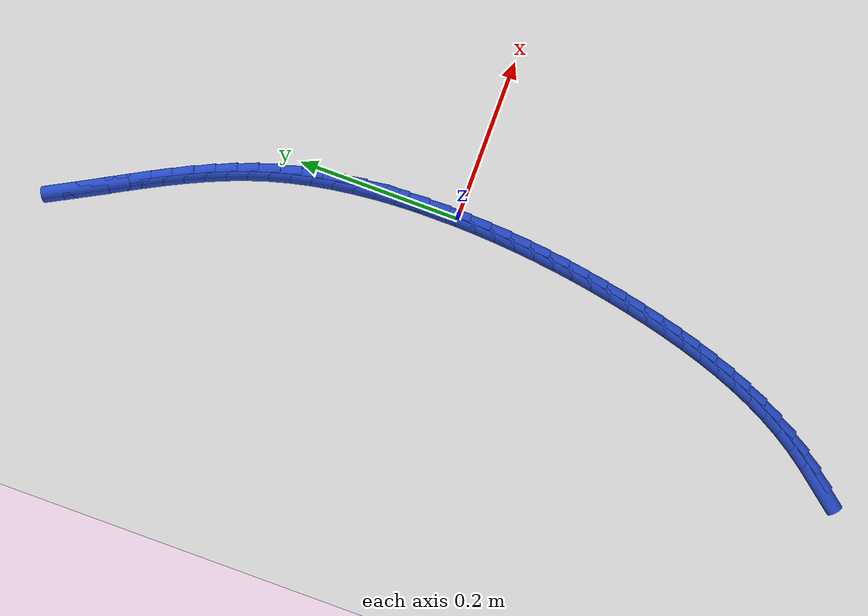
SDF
<sdf version="1.6">
 <world name="default">
  <model name="ground_plane">
   <static>1</static>
   <link name="link">
    <collision name="collision">
     <geometry><plane><normal>0 0 1</normal><size>100 100</size></plane></geometry>
     <surface><friction><ode><mu>100</mu><mu2>50</mu2></ode></friction></surface>
    </collision>
    <visual name="visual">
     <cast_shadows>0</cast_shadows>
     <geometry><plane><normal>0 0 1</normal><size>100 100</size></plane></geometry>
     <material>
      <script><uri>file://media/materials/scripts/gazebo.material</uri><name>Gazebo/WhiteGlow</name></script>
     </material>
    </visual>
   </link>
  </model>
  <model name="line">
   <link name="link_0">
    <pose>-2.6020852139652106e-18 -5.551115123125783e-17 0.01 0 1.57 1.5606720008051456</pose>
    <collision name="collision">
     <geometry><cylinder><radius>0.01</radius><length>0.08</length></cylinder></geometry>
    </collision>
    <visual name="visual">
     <material>
      <script><name>Gazebo/Blue</name><uri>file://media/materials/scripts/gazebo.material</uri></script>
     </material>
     <geometry><cylinder><radius>0.01</radius><length>0.08</length></cylinder></geometry>
    </visual>
   </link>
   <link name="link_1">
    <pose>0.00026168912169531475 0.025846676675730935 0.01 0 1.57 -1.5566072044804915</pose>
    <collision name="collision">
     <geometry><cylinder><radius>0.01</radius><length>0.08</length></cylinder></geometry>
    </collision>
    <visual name="visual">
     <material>
      <script><name>Gazebo/Blue</name><uri>file://media/materials/scripts/gazebo.material</uri></script>
     </material>
     <geometry><cylinder><radius>0.01</radius><length>0.08</length></cylinder></geometry>
    </visual>
   </link>
   <link name="link_2">
    <pose>-0.00010585917153231922 0.05174846386459949 0.01 0 1.57 -1.5296821576817423</pose>
    <collision name="collision">
     <geometry><cylinder><radius>0.01</radius><length>0.08</length></cylinder></geometry>
    </collision>
    <visual name="visual">
     <material>
      <script><name>Gazebo/Blue</name><uri>file://media/materials/scripts/gazebo.material</uri></script>
     </material>
     <geometry><cylinder><radius>0.01</radius><length>0.08</length></cylinder></geometry>
    </visual>
   </link>
   <link name="link_3">
    <pose>-0.001171199643128076 0.07764562175381282 0.01 0 1.57 -1.5000092741032287</pose>
    <collision name="collision">
     <geometry><cylinder><radius>0.01</radius><length>0.08</length></cylinder></geometry>
    </collision>
    <visual name="visual">
     <material>
      <script><name>Gazebo/Blue</name><uri>file://media/materials/scripts/gazebo.material</uri></script>
     </material>
     <geometry><cylinder><radius>0.01</radius><length>0.08</length></cylinder></geometry>
    </visual>
   </link>
   <link name="link_4">
    <pose>-0.0030028870565371206 0.10347841053057813 0.01 0 1.57 -1.4674426135967553</pose>
    <collision name="collision">
     <geometry><cylinder><radius>0.01</radius><length>0.08</length></cylinder></geometry>
    </collision>
    <visual name="visual">
     <material>
      <script><name>Gazebo/Blue</name><uri>file://media/materials/scripts/gazebo.material</uri></script>
     </material>
     <geometry><cylinder><radius>0.01</radius><length>0.08</length></cylinder></geometry>
    </visual>
   </link>
   <link name="link_5">
    <pose>-0.005669476175204622 0.12918709038210263 0.01 0 1.57 -1.4318322130279397</pose>
    <collision name="collision">
     <geometry><cylinder><radius>0.01</radius><length>0.08</length></cylinder></geometry>
    </collision>
    <visual name="visual">
     <material>
      <script><name>Gazebo/Blue</name><uri>file://media/materials/scripts/gazebo.material</uri></script>
     </material>
     <geometry><cylinder><radius>0.01</radius><length>0.08</length></cylinder></geometry>
    </visual>
   </link>
   <link name="link_6">
    <pose>-0.009239521762575751 0.15471192149559365 0.01 0 1.57 -1.3930316349678902</pose>
    <collision name="collision">
     <geometry><cylinder><radius>0.01</radius><length>0.08</length></cylinder></geometry>
    </collision>
    <visual name="visual">
     <material>
      <script><name>Gazebo/Blue</name><uri>file://media/materials/scripts/gazebo.material</uri></script>
     </material>
     <geometry><cylinder><radius>0.01</radius><length>0.08</length></cylinder></geometry>
    </visual>
   </link>
   <link name="link_7">
    <pose>-0.013781578582095673 0.1799931640582583 0.01 0 1.57 -1.3509078144669298</pose>
    <collision name="collision">
     <geometry><cylinder><radius>0.01</radius><length>0.08</length></cylinder></geometry>
    </collision>
    <visual name="visual">
     <material>
      <script><name>Gazebo/Blue</name><uri>file://media/materials/scripts/gazebo.material</uri></script>
     </material>
     <geometry><cylinder><radius>0.01</radius><length>0.08</length></cylinder></geometry>
    </visual>
   </link>
   <link name="link_8">
    <pose>-0.019364201397209554 0.20497107825730382 0.01 0 1.57 -1.3053535194428476</pose>
    <collision name="collision">
     <geometry><cylinder><radius>0.01</radius><length>0.08</length></cylinder></geometry>
    </collision>
    <visual name="visual">
     <material>
      <script><name>Gazebo/Blue</name><uri>file://media/materials/scripts/gazebo.material</uri></script>
     </material>
     <geometry><cylinder><radius>0.01</radius><length>0.08</length></cylinder></geometry>
    </visual>
   </link>
   <link name="link_9">
    <pose>-0.02605594497136256 0.2295859242799375 0.01 0 1.57 -1.2566637800848937</pose>
    <collision name="collision">
     <geometry><cylinder><radius>0.01</radius><length>0.08</length></cylinder></geometry>
    </collision>
    <visual name="visual">
     <material>
      <script><name>Gazebo/Blue</name><uri>file://media/materials/scripts/gazebo.material</uri></script>
     </material>
     <geometry><cylinder><radius>0.01</radius><length>0.08</length></cylinder></geometry>
    </visual>
   </link>
   <link name="link_10">
    <pose>-0.033917150734529215 0.25378242759625824 0.01 0 1.57 -1.2102945592711332</pose>
    <collision name="collision">
     <geometry><cylinder><radius>0.01</radius><length>0.08</length></cylinder></geometry>
    </collision>
    <visual name="visual">
     <material>
      <script><name>Gazebo/Blue</name><uri>file://media/materials/scripts/gazebo.material</uri></script>
     </material>
     <geometry><cylinder><radius>0.01</radius><length>0.08</length></cylinder></geometry>
    </visual>
   </link>
   <link name="link_11">
    <pose>-0.042885287553008605 0.27757211490371175 0.01 0 1.57 -1.1706071240606626</pose>
    <collision name="collision">
     <geometry><cylinder><radius>0.01</radius><length>0.08</length></cylinder></geometry>
    </collision>
    <visual name="visual">
     <material>
      <script><name>Gazebo/Blue</name><uri>file://media/materials/scripts/gazebo.material</uri></script>
     </material>
     <geometry><cylinder><radius>0.01</radius><length>0.08</length></cylinder></geometry>
    </visual>
   </link>
   <link name="link_12">
    <pose>-0.05280324863534753 0.3010179301553623 0.01 0 1.57 -1.1378139994246075</pose>
    <collision name="collision">
     <geometry><cylinder><radius>0.01</radius><length>0.08</length></cylinder></geometry>
    </collision>
    <visual name="visual">
     <material>
      <script><name>Gazebo/Blue</name><uri>file://media/materials/scripts/gazebo.material</uri></script>
     </material>
     <geometry><cylinder><radius>0.01</radius><length>0.08</length></cylinder></geometry>
    </visual>
   </link>
   <link name="link_13">
    <pose>-0.06351149506214147 0.3241841395614755 0.01 0 1.57 -1.1119159873322897</pose>
    <collision name="collision">
     <geometry><cylinder><radius>0.01</radius><length>0.08</length></cylinder></geometry>
    </collision>
    <visual name="visual">
     <material>
      <script><name>Gazebo/Blue</name><uri>file://media/materials/scripts/gazebo.material</uri></script>
     </material>
     <geometry><cylinder><radius>0.01</radius><length>0.08</length></cylinder></geometry>
    </visual>
   </link>
   <link name="link_14">
    <pose>-0.07485048791398585 0.34713500933231717 0.01 0 1.57 -1.0928558864539948</pose>
    <collision name="collision">
     <geometry><cylinder><radius>0.01</radius><length>0.08</length></cylinder></geometry>
    </collision>
    <visual name="visual">
     <material>
      <script><name>Gazebo/Blue</name><uri>file://media/materials/scripts/gazebo.material</uri></script>
     </material>
     <geometry><cylinder><radius>0.01</radius><length>0.08</length></cylinder></geometry>
    </visual>
   </link>
   <link name="link_15">
    <pose>-0.08666068827147619 0.36993480567815323 0.01 0 1.57 -1.0805554052208224</pose>
    <collision name="collision">
     <geometry><cylinder><radius>0.01</radius><length>0.08</length></cylinder></geometry>
    </collision>
    <visual name="visual">
     <material>
      <script><name>Gazebo/Blue</name><uri>file://media/materials/scripts/gazebo.material</uri></script>
     </material>
     <geometry><cylinder><radius>0.01</radius><length>0.08</length></cylinder></geometry>
    </visual>
   </link>
   <link name="link_16">
    <pose>-0.09878255721520791 0.3926477948092493 0.01 0 1.57 -1.0749414477813892</pose>
    <collision name="collision">
     <geometry><cylinder><radius>0.01</radius><length>0.08</length></cylinder></geometry>
    </collision>
    <visual name="visual">
     <material>
      <script><name>Gazebo/Blue</name><uri>file://media/materials/scripts/gazebo.material</uri></script>
     </material>
     <geometry><cylinder><radius>0.01</radius><length>0.08</length></cylinder></geometry>
    </visual>
   </link>
   <link name="link_17">
    <pose>-0.11105655582577649 0.41533824293587124 0.01 0 1.57 -1.0759622935303972</pose>
    <collision name="collision">
     <geometry><cylinder><radius>0.01</radius><length>0.08</length></cylinder></geometry>
    </collision>
    <visual name="visual">
     <material>
      <script><name>Gazebo/Blue</name><uri>file://media/materials/scripts/gazebo.material</uri></script>
     </material>
     <geometry><cylinder><radius>0.01</radius><length>0.08</length></cylinder></geometry>
    </visual>
   </link>
   <link name="link_18">
    <pose>-0.12332314518377742 0.43807041626828486 0.01 0 1.57 -1.0835945328563317</pose>
    <collision name="collision">
     <geometry><cylinder><radius>0.01</radius><length>0.08</length></cylinder></geometry>
    </collision>
    <visual name="visual">
     <material>
      <script><name>Gazebo/Blue</name><uri>file://media/materials/scripts/gazebo.material</uri></script>
     </material>
     <geometry><cylinder><radius>0.01</radius><length>0.08</length></cylinder></geometry>
    </visual>
   </link>
   <link name="link_239">
    <pose>-0.1478228244963894 -0.5095684443613625 0.01 0 1.57 0.902097547994053</pose>
    <collision name="collision">
     <geometry><cylinder><radius>0.01</radius><length>0.08</length></cylinder></geometry>
    </collision>
    <visual name="visual">
     <material>
      <script><name>Gazebo/Blue</name><uri>file://media/materials/scripts/gazebo.material</uri></script>
     </material>
     <geometry><cylinder><radius>0.01</radius><length>0.08</length></cylinder></geometry>
    </visual>
   </link>
   <link name="link_240">
    <pose>-0.13206080267132908 -0.4896200127712023 0.01 0 1.57 0.9519914985314588</pose>
    <collision name="collision">
     <geometry><cylinder><radius>0.01</radius><length>0.08</length></cylinder></geometry>
    </collision>
    <visual name="visual">
     <material>
      <script><name>Gazebo/Blue</name><uri>file://media/materials/scripts/gazebo.material</uri></script>
     </material>
     <geometry><cylinder><radius>0.01</radius><length>0.08</length></cylinder></geometry>
    </visual>
   </link>
   <link name="link_241">
    <pose>-0.1173458060415012 -0.46895596584724425 0.01 0 1.57 1.0100530473727374</pose>
    <collision name="collision">
     <geometry><cylinder><radius>0.01</radius><length>0.08</length></cylinder></geometry>
    </collision>
    <visual name="visual">
     <material>
      <script><name>Gazebo/Blue</name><uri>file://media/materials/scripts/gazebo.material</uri></script>
     </material>
     <geometry><cylinder><radius>0.01</radius><length>0.08</length></cylinder></geometry>
    </visual>
   </link>
   <link name="link_242">
    <pose>-0.10384591523954843 -0.4474588265535005 0.01 0 1.57 1.0671271466955847</pose>
    <collision name="collision">
     <geometry><cylinder><radius>0.01</radius><length>0.08</length></cylinder></geometry>
    </collision>
    <visual name="visual">
     <material>
      <script><name>Gazebo/Blue</name><uri>file://media/materials/scripts/gazebo.material</uri></script>
     </material>
     <geometry><cylinder><radius>0.01</radius><length>0.08</length></cylinder></geometry>
    </visual>
   </link>
   <link name="link_243">
    <pose>-0.09155624604552522 -0.4251576154854975 0.01 0 1.57 1.1191592557271175</pose>
    <collision name="collision">
     <geometry><cylinder><radius>0.01</radius><length>0.08</length></cylinder></geometry>
    </collision>
    <visual name="visual">
     <material>
      <script><name>Gazebo/Blue</name><uri>file://media/materials/scripts/gazebo.material</uri></script>
     </material>
     <geometry><cylinder><radius>0.01</radius><length>0.08</length></cylinder></geometry>
    </visual>
   </link>
   <link name="link_244">
    <pose>-0.0803943701215267 -0.4021470314933251 0.01 0 1.57 1.1661942485279635</pose>
    <collision name="collision">
     <geometry><cylinder><radius>0.01</radius><length>0.08</length></cylinder></geometry>
    </collision>
    <visual name="visual">
     <material>
      <script><name>Gazebo/Blue</name><uri>file://media/materials/scripts/gazebo.material</uri></script>
     </material>
     <geometry><cylinder><radius>0.01</radius><length>0.08</length></cylinder></geometry>
    </visual>
   </link>
   <link name="link_245">
    <pose>-0.07027749291041281 -0.37852208360714484 0.01 0 1.57 1.2083792132667515</pose>
    <collision name="collision">
     <geometry><cylinder><radius>0.01</radius><length>0.08</length></cylinder></geometry>
    </collision>
    <visual name="visual">
     <material>
      <script><name>Gazebo/Blue</name><uri>file://media/materials/scripts/gazebo.material</uri></script>
     </material>
     <geometry><cylinder><radius>0.01</radius><length>0.08</length></cylinder></geometry>
    </visual>
   </link>
   <link name="link_246">
    <pose>-0.061122819855044336 -0.35437778085712085 0.01 0 1.57 1.2459091884688371</pose>
    <collision name="collision">
     <geometry><cylinder><radius>0.01</radius><length>0.08</length></cylinder></geometry>
    </collision>
    <visual name="visual">
     <material>
      <script><name>Gazebo/Blue</name><uri>file://media/materials/scripts/gazebo.material</uri></script>
     </material>
     <geometry><cylinder><radius>0.01</radius><length>0.08</length></cylinder></geometry>
    </visual>
   </link>
   <link name="link_247">
    <pose>-0.05284755639828112 -0.32980913227341463 0.01 0 1.57 1.2789986236889528</pose>
    <collision name="collision">
     <geometry><cylinder><radius>0.01</radius><length>0.08</length></cylinder></geometry>
    </collision>
    <visual name="visual">
     <material>
      <script><name>Gazebo/Blue</name><uri>file://media/materials/scripts/gazebo.material</uri></script>
     </material>
     <geometry><cylinder><radius>0.01</radius><length>0.08</length></cylinder></geometry>
    </visual>
   </link>
   <link name="link_248">
    <pose>-0.04536890798298339 -0.3049111468861889 0.01 0 1.57 1.3078596234680686</pose>
    <collision name="collision">
     <geometry><cylinder><radius>0.01</radius><length>0.08</length></cylinder></geometry>
    </collision>
    <visual name="visual">
     <material>
      <script><name>Gazebo/Blue</name><uri>file://media/materials/scripts/gazebo.material</uri></script>
     </material>
     <geometry><cylinder><radius>0.01</radius><length>0.08</length></cylinder></geometry>
    </visual>
   </link>
   <link name="link_249">
    <pose>-0.03860408005201133 -0.27977883372560597 0.01 0 1.57 1.33268587897376</pose>
    <collision name="collision">
     <geometry><cylinder><radius>0.01</radius><length>0.08</length></cylinder></geometry>
    </collision>
    <visual name="visual">
     <material>
      <script><name>Gazebo/Blue</name><uri>file://media/materials/scripts/gazebo.material</uri></script>
     </material>
     <geometry><cylinder><radius>0.01</radius><length>0.08</length></cylinder></geometry>
    </visual>
   </link>
   <link name="link_250">
    <pose>-0.03247027804822513 -0.25450720182182823 0.01 0 1.57 1.353686403612672</pose>
    <collision name="collision">
     <geometry><cylinder><radius>0.01</radius><length>0.08</length></cylinder></geometry>
    </collision>
    <visual name="visual">
     <material>
      <script><name>Gazebo/Blue</name><uri>file://media/materials/scripts/gazebo.material</uri></script>
     </material>
     <geometry><cylinder><radius>0.01</radius><length>0.08</length></cylinder></geometry>
    </visual>
   </link>
   <link name="link_251">
    <pose>-0.026885660719618367 -0.2291901024511704 0.01 0 1.57 1.3727377716532887</pose>
    <collision name="collision">
     <geometry><cylinder><radius>0.01</radius><length>0.08</length></cylinder></geometry>
    </collision>
    <visual name="visual">
     <material>
      <script><name>Gazebo/Blue</name><uri>file://media/materials/scripts/gazebo.material</uri></script>
     </material>
     <geometry><cylinder><radius>0.01</radius><length>0.08</length></cylinder></geometry>
    </visual>
   </link>
   <link name="link_252">
    <pose>-0.02180545701025682 -0.2038763665070267 0.01 0 1.57 1.3921375088629513</pose>
    <collision name="collision">
     <geometry><cylinder><radius>0.01</radius><length>0.08</length></cylinder></geometry>
    </collision>
    <visual name="visual">
     <material>
      <script><name>Gazebo/Blue</name><uri>file://media/materials/scripts/gazebo.material</uri></script>
     </material>
     <geometry><cylinder><radius>0.01</radius><length>0.08</length></cylinder></geometry>
    </visual>
   </link>
   <link name="link_253">
    <pose>-0.01723305741164513 -0.1785563344636047 0.01 0 1.57 1.4120024652545362</pose>
    <collision name="collision">
     <geometry><cylinder><radius>0.01</radius><length>0.08</length></cylinder></geometry>
    </collision>
    <visual name="visual">
     <material>
      <script><name>Gazebo/Blue</name><uri>file://media/materials/scripts/gazebo.material</uri></script>
     </material>
     <geometry><cylinder><radius>0.01</radius><length>0.08</length></cylinder></geometry>
    </visual>
   </link>
   <link name="link_254">
    <pose>-0.01317507174137417 -0.15321643704257226 0.01 0 1.57 1.432292014539883</pose>
    <collision name="collision">
     <geometry><cylinder><radius>0.01</radius><length>0.08</length></cylinder></geometry>
    </collision>
    <visual name="visual">
     <material>
      <script><name>Gazebo/Blue</name><uri>file://media/materials/scripts/gazebo.material</uri></script>
     </material>
     <geometry><cylinder><radius>0.01</radius><length>0.08</length></cylinder></geometry>
    </visual>
   </link>
   <link name="link_255">
    <pose>-0.009638109817034935 -0.12784310496559803 0.01 0 1.57 1.4529620324614247</pose>
    <collision name="collision">
     <geometry><cylinder><radius>0.01</radius><length>0.08</length></cylinder></geometry>
    </collision>
    <visual name="visual">
     <material>
      <script><name>Gazebo/Blue</name><uri>file://media/materials/scripts/gazebo.material</uri></script>
     </material>
     <geometry><cylinder><radius>0.01</radius><length>0.08</length></cylinder></geometry>
    </visual>
   </link>
   <link name="link_256">
    <pose>-0.006628781456218435 -0.10242276895435054 0.01 0 1.57 1.473965227220159</pose>
    <collision name="collision">
     <geometry><cylinder><radius>0.01</radius><length>0.08</length></cylinder></geometry>
    </collision>
    <visual name="visual">
     <material>
      <script><name>Gazebo/Blue</name><uri>file://media/materials/scripts/gazebo.material</uri></script>
     </material>
     <geometry><cylinder><radius>0.01</radius><length>0.08</length></cylinder></geometry>
    </visual>
   </link>
   <link name="link_257">
    <pose>-0.004153696476515684 -0.07694185973049844 0.01 0 1.57 1.4952515445292043</pose>
    <collision name="collision">
     <geometry><cylinder><radius>0.01</radius><length>0.08</length></cylinder></geometry>
    </collision>
    <visual name="visual">
     <material>
      <script><name>Gazebo/Blue</name><uri>file://media/materials/scripts/gazebo.material</uri></script>
     </material>
     <geometry><cylinder><radius>0.01</radius><length>0.08</length></cylinder></geometry>
    </visual>
   </link>
   <link name="link_258">
    <pose>-0.0022194646955176855 -0.05138680801571023 0.01 0 1.57 1.5167686405386882</pose>
    <collision name="collision">
     <geometry><cylinder><radius>0.01</radius><length>0.08</length></cylinder></geometry>
    </collision>
    <visual name="visual">
     <material>
      <script><name>Gazebo/Blue</name><uri>file://media/materials/scripts/gazebo.material</uri></script>
     </material>
     <geometry><cylinder><radius>0.01</radius><length>0.08</length></cylinder></geometry>
    </visual>
   </link>
   <link name="link_259">
    <pose>-0.0008326959308154541 -0.025744044531654537 0.01 0 1.57 1.538462412827709</pose>
    <collision name="collision">
     <geometry><cylinder><radius>0.01</radius><length>0.08</length></cylinder></geometry>
    </collision>
    <visual name="visual">
     <material>
      <script><name>Gazebo/Blue</name><uri>file://media/materials/scripts/gazebo.material</uri></script>
     </material>
     <geometry><cylinder><radius>0.01</radius><length>0.08</length></cylinder></geometry>
    </visual>
   </link>
   <link name="link_260">
    <pose>5.204170427930421e-18 6.245004513516506e-17 0.01 0 1.57 1.5602775769202284</pose>
    <collision name="collision">
     <geometry><cylinder><radius>0.01</radius><length>0.08</length></cylinder></geometry>
    </collision>
    <visual name="visual">
     <material>
      <script><name>Gazebo/Blue</name><uri>file://media/materials/scripts/gazebo.material</uri></script>
     </material>
     <geometry><cylinder><radius>0.01</radius><length>0.08</length></cylinder></geometry>
    </visual>
   </link>
   <link name="link_261">
    <pose>0.0002720132793376812 0.025858894857585 0.01 0 1.57 -1.5594343800337438</pose>
    <collision name="collision">
     <geometry><cylinder><radius>0.01</radius><length>0.08</length></cylinder></geometry>
    </collision>
    <visual name="visual">
     <material>
      <script><name>Gazebo/Blue</name><uri>file://media/materials/scripts/gazebo.material</uri></script>
     </material>
     <geometry><cylinder><radius>0.01</radius><length>0.08</length></cylinder></geometry>
    </visual>
   </link>
   <link name="link_262">
    <pose>-2.326591039343226e-05 0.05184620931943167 0.01 0 1.57 -1.5703475782916385</pose>
    <collision name="collision">
     <geometry><cylinder><radius>0.01</radius><length>0.08</length></cylinder></geometry>
    </collision>
    <visual name="visual">
     <material>
      <script><name>Gazebo/Blue</name><uri>file://media/materials/scripts/gazebo.material</uri></script>
     </material>
     <geometry><cylinder><radius>0.01</radius><length>0.08</length></cylinder></geometry>
    </visual>
   </link>
  </model>
 </world>
</sdf>
